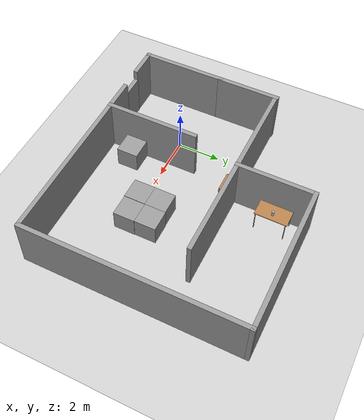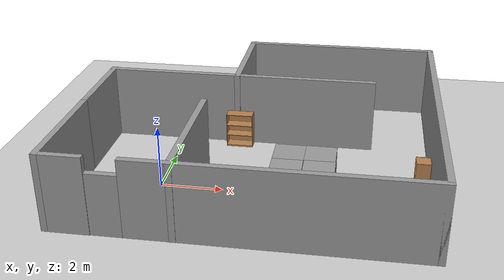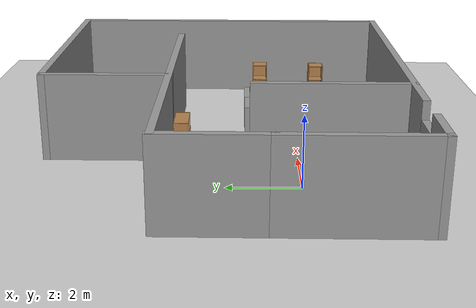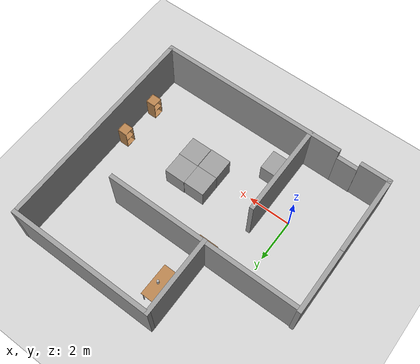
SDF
<sdf version="1.4">
 <world name="default">
  <light name="sun" type="directional">
   <pose>0 0 10 0 -0 0</pose>
   <diffuse>0.8 0.8 0.8 1</diffuse>
   <specular>0.2 0.2 0.2 1</specular>
   <attenuation>
    <range>1000</range>
    <constant>0.9</constant>
    <linear>0.01</linear>
    <quadratic>0.001</quadratic>
   </attenuation>
   <direction>-0.5 0.1 -0.9</direction>
  </light>
  <model name="ground_plane">
   <static>1</static>
   <link name="link">
    <collision name="collision">
     <geometry><plane><normal>0 0 1</normal><size>100 100</size></plane></geometry>
     <surface><friction><ode><mu>100</mu><mu2>50</mu2></ode></friction></surface>
    </collision>
    <visual name="visual">
     <cast_shadows>0</cast_shadows>
     <geometry><plane><normal>0 0 1</normal><size>100 100</size></plane></geometry>
     <material>
      <script><uri>file://media/materials/scripts/gazebo.material</uri><name>Gazebo/Grey</name></script>
     </material>
    </visual>
    <velocity_decay><linear>0</linear><angular>0</angular></velocity_decay>
   </link>
  </model>
  <physics type="ode">
   <max_step_size>0.001</max_step_size>
   <real_time_factor>1</real_time_factor>
   <real_time_update_rate>1000</real_time_update_rate>
   <gravity>0 0 -9.8</gravity>
  </physics>
  <scene><ambient>0.4 0.4 0.4 1</ambient><background>0.7 0.7 0.7 1</background><shadows>1</shadows></scene>
  <model name="simplehouse">
   <link name="Door_0">
    <collision name="Door_0_Collision">
     <geometry><box><size>1 0.2 2</size></box></geometry>
     <pose>0 0 1 0 -0 0</pose>
    </collision>
    <visual name="Door_0_Visual">
     <pose>0 0 1 0 -0 0</pose>
     <geometry><box><size>1 0.2 2</size></box></geometry>
     <material>
      <script><uri>file://media/materials/scripts/gazebo.material</uri><name>Gazebo/Grey</name></script>
     </material>
    </visual>
    <velocity_decay><linear>0</linear><angular>0</angular></velocity_decay>
    <pose>-0.74 -2.95 0 0 -0 0</pose>
   </link>
   <link name="Wall_0">
    <collision name="Wall_0_Collision">
     <geometry><box><size>1.46233 0.2 2.5</size></box></geometry>
     <pose>0 0 1.25 0 -0 0</pose>
    </collision>
    <visual name="Wall_0_Visual">
     <pose>0 0 1.25 0 -0 0</pose>
     <geometry><box><size>1.46233 0.2 2.5</size></box></geometry>
     <material>
      <script><uri>file://media/materials/scripts/gazebo.material</uri><name>Gazebo/Grey</name></script>
     </material>
    </visual>
    <velocity_decay><linear>0</linear><angular>0</angular></velocity_decay>
    <pose>-1.95359 -2.96885 0 0 -0 3.14159</pose>
   </link>
   <link name="Wall_1">
    <collision name="Wall_1_Collision">
     <geometry><box><size>4.00219 0.2 2.5</size></box></geometry>
     <pose>0 0 1.25 0 -0 0</pose>
    </collision>
    <visual name="Wall_1_Visual">
     <pose>0 0 1.25 0 -0 0</pose>
     <geometry><box><size>4.00219 0.2 2.5</size></box></geometry>
     <material>
      <script><uri>file://media/materials/scripts/gazebo.material</uri><name>Gazebo/Grey</name></script>
     </material>
    </visual>
    <velocity_decay><linear>0</linear><angular>0</angular></velocity_decay>
    <pose>-2.58475 -1.06776 0 0 -0 1.5708</pose>
   </link>
   <link name="Wall_10">
    <collision name="Wall_10_Collision">
     <geometry><box><size>3.69801 0.2 2.5</size></box></geometry>
     <pose>0 0 1.25 0 -0 0</pose>
    </collision>
    <visual name="Wall_10_Visual">
     <pose>0 0 1.25 0 -0 0</pose>
     <geometry><box><size>3.69801 0.2 2.5</size></box></geometry>
     <material>
      <script><uri>file://media/materials/scripts/gazebo.material</uri><name>Gazebo/Grey</name></script>
     </material>
    </visual>
    <velocity_decay><linear>0</linear><angular>0</angular></velocity_decay>
    <pose>1.86461 5.32124 0 0 0 -1.5708</pose>
   </link>
   <link name="Wall_12">
    <collision name="Wall_12_Collision">
     <geometry><box><size>4.432 0.2 2.5</size></box></geometry>
     <pose>0 0 1.25 0 -0 0</pose>
    </collision>
    <visual name="Wall_12_Visual">
     <pose>0 0 1.25 0 -0 0</pose>
     <geometry><box><size>4.432 0.2 2.5</size></box></geometry>
     <material>
      <script><uri>file://media/materials/scripts/gazebo.material</uri><name>Gazebo/Grey</name></script>
     </material>
    </visual>
    <velocity_decay><linear>0</linear><angular>0</angular></velocity_decay>
    <pose>1.18871 -0.844672 0 0 -0 1.5708</pose>
   </link>
   <link name="Wall_2">
    <collision name="Wall_2_Collision">
     <geometry><box><size>2.99443 0.2 2.5</size></box></geometry>
     <pose>0 0 1.25 0 -0 0</pose>
    </collision>
    <visual name="Wall_2_Visual">
     <pose>0 0 1.25 0 -0 0</pose>
     <geometry><box><size>2.99443 0.2 2.5</size></box></geometry>
     <material>
      <script><uri>file://media/materials/scripts/gazebo.material</uri><name>Gazebo/Grey</name></script>
     </material>
    </visual>
    <velocity_decay><linear>0</linear><angular>0</angular></velocity_decay>
    <pose>-2.58475 2.23055 0 0 -0 1.5708</pose>
   </link>
   <link name="Wall_4">
    <collision name="Wall_4_Collision">
     <geometry><box><size>9.26205 0.2 2.5</size></box></geometry>
     <pose>0 0 1.25 0 -0 0</pose>
    </collision>
    <visual name="Wall_4_Visual">
     <pose>0 0 1.25 0 -0 0</pose>
     <geometry><box><size>9.26205 0.2 2.5</size></box></geometry>
     <material>
      <script><uri>file://media/materials/scripts/gazebo.material</uri><name>Gazebo/Grey</name></script>
     </material>
    </visual>
    <velocity_decay><linear>0</linear><angular>0</angular></velocity_decay>
    <pose>1.97226 3.58568 0 0 -0 0</pose>
   </link>
   <link name="Wall_7">
    <collision name="Wall_7_Collision">
     <geometry><box><size>8.94 0.2 2.5</size></box></geometry>
     <pose>0 0 1.25 0 -0 0</pose>
    </collision>
    <visual name="Wall_7_Visual">
     <pose>0 0 1.25 0 -0 0</pose>
     <geometry><box><size>8.94 0.2 2.5</size></box></geometry>
     <material>
      <script><uri>file://media/materials/scripts/gazebo.material</uri><name>Gazebo/Grey</name></script>
     </material>
    </visual>
    <velocity_decay><linear>0</linear><angular>0</angular></velocity_decay>
    <pose>4.21288 -2.95115 0 0 -0 0</pose>
   </link>
   <link name="Wall_8">
    <collision name="Wall_8_Collision">
     <geometry><box><size>10.2214 0.2 2.5</size></box></geometry>
     <pose>0 0 1.25 0 -0 0</pose>
    </collision>
    <visual name="Wall_8_Visual">
     <pose>0 0 1.25 0 -0 0</pose>
     <geometry><box><size>10.2214 0.2 2.5</size></box></geometry>
     <material>
      <script><uri>file://media/materials/scripts/gazebo.material</uri><name>Gazebo/Grey</name></script>
     </material>
    </visual>
    <velocity_decay><linear>0</linear><angular>0</angular></velocity_decay>
    <pose>8.58288 2.05955 0 0 -0 1.5708</pose>
   </link>
   <link name="Wall_9">
    <collision name="Wall_9_Collision">
     <geometry><box><size>6.91827 0.2 2.5</size></box></geometry>
     <pose>0 0 1.25 0 -0 0</pose>
    </collision>
    <visual name="Wall_9_Visual">
     <pose>0 0 1.25 0 -0 0</pose>
     <geometry><box><size>6.91827 0.2 2.5</size></box></geometry>
     <material>
      <script><uri>file://media/materials/scripts/gazebo.material</uri><name>Gazebo/Grey</name></script>
     </material>
    </visual>
    <velocity_decay><linear>0</linear><angular>0</angular></velocity_decay>
    <pose>5.22375 7.07025 0 0 -0 3.14159</pose>
   </link>
   <static>1</static>
  </model>
  <model name="bookshelf">
   <static>1</static>
   <link name="link">
    <inertial><mass>1</mass></inertial>
    <collision name="back">
     <pose>0 0.005 0.6 0 -0 0</pose>
     <geometry><box><size>0.9 0.01 1.2</size></box></geometry>
    </collision>
    <visual name="visual1">
     <pose>0 0.005 0.6 0 -0 0</pose>
     <geometry><box><size>0.9 0.01 1.2</size></box></geometry>
     <material>
      <script><uri>file://media/materials/scripts/gazebo.material</uri><name>Gazebo/Wood</name></script>
     </material>
    </visual>
    <collision name="left_side">
     <pose>0.45 -0.195 0.6 0 -0 0</pose>
     <geometry><box><size>0.02 0.4 1.2</size></box></geometry>
    </collision>
    <visual name="visual2">
     <pose>0.45 -0.195 0.6 0 -0 0</pose>
     <geometry><box><size>0.02 0.4 1.2</size></box></geometry>
     <material>
      <script><uri>file://media/materials/scripts/gazebo.material</uri><name>Gazebo/Wood</name></script>
     </material>
    </visual>
    <collision name="right_side">
     <pose>-0.45 -0.195 0.6 0 -0 0</pose>
     <geometry><box><size>0.02 0.4 1.2</size></box></geometry>
    </collision>
    <visual name="visual3">
     <pose>-0.45 -0.195 0.6 0 -0 0</pose>
     <geometry><box><size>0.02 0.4 1.2</size></box></geometry>
     <material>
      <script><uri>file://media/materials/scripts/gazebo.material</uri><name>Gazebo/Wood</name></script>
     </material>
    </visual>
    <collision name="bottom">
     <pose>0 -0.195 0.03 0 -0 0</pose>
     <geometry><box><size>0.88 0.4 0.06</size></box></geometry>
    </collision>
    <visual name="visual4">
     <pose>0 -0.195 0.03 0 -0 0</pose>
     <geometry><box><size>0.88 0.4 0.06</size></box></geometry>
     <material>
      <script><uri>file://media/materials/scripts/gazebo.material</uri><name>Gazebo/Wood</name></script>
     </material>
    </visual>
    <collision name="top">
     <pose>0 -0.195 1.19 0 -0 0</pose>
     <geometry><box><size>0.88 0.4 0.02</size></box></geometry>
    </collision>
    <visual name="visual5">
     <pose>0 -0.195 1.19 0 -0 0</pose>
     <geometry><box><size>0.88 0.4 0.02</size></box></geometry>
     <material>
      <script><uri>file://media/materials/scripts/gazebo.material</uri><name>Gazebo/Wood</name></script>
     </material>
    </visual>
    <collision name="low_shelf">
     <pose>0 -0.195 0.43 0 -0 0</pose>
     <geometry><box><size>0.88 0.4 0.02</size></box></geometry>
    </collision>
    <visual name="visual6">
     <pose>0 -0.195 0.43 0 -0 0</pose>
     <geometry><box><size>0.88 0.4 0.02</size></box></geometry>
     <material>
      <script><uri>file://media/materials/scripts/gazebo.material</uri><name>Gazebo/Wood</name></script>
     </material>
    </visual>
    <collision name="high_shelf">
     <pose>0 -0.195 0.8 0 -0 0</pose>
     <geometry><box><size>0.88 0.4 0.02</size></box></geometry>
    </collision>
    <visual name="visual7">
     <pose>0 -0.195 0.8 0 -0 0</pose>
     <geometry><box><size>0.88 0.4 0.02</size></box></geometry>
     <material>
      <script><uri>file://media/materials/scripts/gazebo.material</uri><name>Gazebo/Wood</name></script>
     </material>
    </visual>
    <velocity_decay><linear>0</linear><angular>0</angular></velocity_decay>
   </link>
   <pose>2 3.44814 0 0 -0 0</pose>
  </model>
  <model name="table">
   <static>1</static>
   <link name="link">
    <collision name="surface">
     <pose>0 0 1 0 -0 0</pose>
     <geometry><box><size>1.5 0.8 0.03</size></box></geometry>
    </collision>
    <visual name="visual1">
     <pose>0 0 1 0 -0 0</pose>
     <geometry><box><size>1.5 0.8 0.03</size></box></geometry>
     <material>
      <script><uri>file://media/materials/scripts/gazebo.material</uri><name>Gazebo/Wood</name></script>
     </material>
    </visual>
    <collision name="front_left_leg">
     <pose>0.68 0.38 0.5 0 -0 0</pose>
     <geometry><cylinder><radius>0.02</radius><length>1</length></cylinder></geometry>
    </collision>
    <visual name="front_left_leg">
     <pose>0.68 0.38 0.5 0 -0 0</pose>
     <geometry><cylinder><radius>0.02</radius><length>1</length></cylinder></geometry>
     <material>
      <script><uri>file://media/materials/scripts/gazebo.material</uri><name>Gazebo/Grey</name></script>
     </material>
    </visual>
    <collision name="front_right_leg">
     <pose>0.68 -0.38 0.5 0 -0 0</pose>
     <geometry><cylinder><radius>0.02</radius><length>1</length></cylinder></geometry>
    </collision>
    <visual name="front_right_leg">
     <pose>0.68 -0.38 0.5 0 -0 0</pose>
     <geometry><cylinder><radius>0.02</radius><length>1</length></cylinder></geometry>
     <material>
      <script><uri>file://media/materials/scripts/gazebo.material</uri><name>Gazebo/Grey</name></script>
     </material>
    </visual>
    <collision name="back_right_leg">
     <pose>-0.68 -0.38 0.5 0 -0 0</pose>
     <geometry><cylinder><radius>0.02</radius><length>1</length></cylinder></geometry>
    </collision>
    <visual name="back_right_leg">
     <pose>-0.68 -0.38 0.5 0 -0 0</pose>
     <geometry><cylinder><radius>0.02</radius><length>1</length></cylinder></geometry>
     <material>
      <script><uri>file://media/materials/scripts/gazebo.material</uri><name>Gazebo/Grey</name></script>
     </material>
    </visual>
    <collision name="back_left_leg">
     <pose>-0.68 0.38 0.5 0 -0 0</pose>
     <geometry><cylinder><radius>0.02</radius><length>1</length></cylinder></geometry>
    </collision>
    <visual name="back_left_leg">
     <pose>-0.68 0.38 0.5 0 -0 0</pose>
     <geometry><cylinder><radius>0.02</radius><length>1</length></cylinder></geometry>
     <material>
      <script><uri>file://media/materials/scripts/gazebo.material</uri><name>Gazebo/Grey</name></script>
     </material>
    </visual>
    <velocity_decay><linear>0</linear><angular>0</angular></velocity_decay>
   </link>
   <pose>2.47078 5.63919 0 0 -0 1.56</pose>
  </model>
  <model name="unit_box_1">
   <pose>1.78871 -1.58208 0.5 0 -0 5e-06</pose>
   <link name="link">
    <inertial>
     <mass>1</mass>
     <inertia><ixx>1</ixx><ixy>0</ixy><ixz>0</ixz><iyy>1</iyy><iyz>0</iyz><izz>1</izz></inertia>
    </inertial>
    <collision name="collision"><geometry><box><size>1 1 1</size></box></geometry></collision>
    <visual name="visual">
     <geometry><box><size>1 1 1</size></box></geometry>
     <material>
      <script><uri>file://media/materials/scripts/gazebo.material</uri><name>Gazebo/Grey</name></script>
     </material>
    </visual>
    <velocity_decay><linear>0</linear><angular>0</angular></velocity_decay>
   </link>
   <static>0</static>
  </model>
  <model name="unit_box_2">
   <pose>3.99996 1.00004 0.5 0 -0 5.2e-05</pose>
   <link name="link">
    <inertial>
     <mass>1</mass>
     <inertia><ixx>1</ixx><ixy>0</ixy><ixz>0</ixz><iyy>1</iyy><iyz>0</iyz><izz>1</izz></inertia>
    </inertial>
    <collision name="collision"><geometry><box><size>1 1 1</size></box></geometry></collision>
    <visual name="visual">
     <geometry><box><size>1 1 1</size></box></geometry>
     <material>
      <script><uri>file://media/materials/scripts/gazebo.material</uri><name>Gazebo/Grey</name></script>
     </material>
    </visual>
    <velocity_decay><linear>0</linear><angular>0</angular></velocity_decay>
   </link>
   <static>0</static>
  </model>
  <model name="unit_box_3">
   <pose>4.99998 1.01826 0.5 0 -0 9.8e-05</pose>
   <link name="link">
    <inertial>
     <mass>1</mass>
     <inertia><ixx>1</ixx><ixy>0</ixy><ixz>0</ixz><iyy>1</iyy><iyz>0</iyz><izz>1</izz></inertia>
    </inertial>
    <collision name="collision"><geometry><box><size>1 1 1</size></box></geometry></collision>
    <visual name="visual">
     <geometry><box><size>1 1 1</size></box></geometry>
     <material>
      <script><uri>file://media/materials/scripts/gazebo.material</uri><name>Gazebo/Grey</name></script>
     </material>
    </visual>
    <velocity_decay><linear>0</linear><angular>0</angular></velocity_decay>
   </link>
   <static>0</static>
  </model>
  <model name="unit_box_4">
   <pose>4 0 0.5 0 -0 0</pose>
   <link name="link">
    <inertial>
     <mass>1</mass>
     <inertia><ixx>1</ixx><ixy>0</ixy><ixz>0</ixz><iyy>1</iyy><iyz>0</iyz><izz>1</izz></inertia>
    </inertial>
    <collision name="collision"><geometry><box><size>1 1 1</size></box></geometry></collision>
    <visual name="visual">
     <geometry><box><size>1 1 1</size></box></geometry>
     <material>
      <script><uri>file://media/materials/scripts/gazebo.material</uri><name>Gazebo/Grey</name></script>
     </material>
    </visual>
    <velocity_decay><linear>0</linear><angular>0</angular></velocity_decay>
   </link>
   <static>0</static>
  </model>
  <model name="unit_box_5">
   <pose>5.01493 0.018257 0.5 0 -0 9.8e-05</pose>
   <link name="link">
    <inertial>
     <mass>1</mass>
     <inertia><ixx>1</ixx><ixy>0</ixy><ixz>0</ixz><iyy>1</iyy><iyz>0</iyz><izz>1</izz></inertia>
    </inertial>
    <collision name="collision"><geometry><box><size>1 1 1</size></box></geometry></collision>
    <visual name="visual">
     <geometry><box><size>1 1 1</size></box></geometry>
     <material>
      <script><uri>file://media/materials/scripts/gazebo.material</uri><name>Gazebo/Grey</name></script>
     </material>
    </visual>
    <velocity_decay><linear>0</linear><angular>0</angular></velocity_decay>
   </link>
   <static>0</static>
  </model>
  <model name="beer">
   <link name="link">
    <pose>0 0 0.115 0 -0 0</pose>
    <inertial>
     <mass>0.39</mass>
     <inertia><ixx>0.00058</ixx><ixy>0</ixy><ixz>0</ixz><iyy>0.00058</iyy><iyz>0</iyz><izz>0.00019</izz></inertia>
    </inertial>
    <collision name="collision">
     <geometry><cylinder><radius>0.055</radius><length>0.23</length></cylinder></geometry>
    </collision>
    <visual name="visual">
     <geometry><cylinder><radius>0.055</radius><length>0.23</length></cylinder></geometry>
     <material>
      <script>
       <uri>model://beer/materials/scripts</uri>
       <uri>model://beer/materials/textures</uri>
       <name>Beer/Diffuse</name>
      </script>
     </material>
    </visual>
    <velocity_decay><linear>0</linear><angular>0</angular></velocity_decay>
   </link>
   <pose>2.59977 5.637 1.01499 3.6e-05 -2.9e-05 0.000624</pose>
   <static>0</static>
  </model>
  <model name="cabinet">
   <static>1</static>
   <link name="cabinet_bottom_plate">
    <inertial>
     <pose>0 0 -1 0 -0 0</pose>
     <inertia><ixx>2.05</ixx><ixy>0</ixy><ixz>0</ixz><iyy>2.05</iyy><iyz>0</iyz><izz>2.05</izz></inertia>
     <mass>25</mass>
    </inertial>
    <collision name="cabinet_bottom_plate_geom">
     <pose>0 0 0.01 0 -0 0</pose>
     <geometry><box><size>0.45 0.45 0.02</size></box></geometry>
    </collision>
    <visual name="cabinet_bottom_plate_geom_visual">
     <pose>0 0 0.01 0 -0 0</pose>
     <geometry><box><size>0.45 0.45 0.02</size></box></geometry>
     <material>
      <script><uri>file://media/materials/scripts/gazebo.material</uri><name>Gazebo/Wood</name></script>
     </material>
    </visual>
    <collision name="cabinet_bottom_plate_geom_cabinet_back_plate">
     <pose>0.235 0 0.51 0 -0 0</pose>
     <geometry><box><size>0.02 0.45 1.02</size></box></geometry>
    </collision>
    <visual name="cabinet_bottom_plate_geom_cabinet_back_plate_visual">
     <pose>0.235 0 0.51 0 -0 0</pose>
     <geometry><box><size>0.02 0.45 1.02</size></box></geometry>
     <material>
      <script><uri>file://media/materials/scripts/gazebo.material</uri><name>Gazebo/Wood</name></script>
     </material>
    </visual>
    <collision name="cabinet_bottom_plate_geom_cabinet_left_plate">
     <pose>0 0.235 0.51 0 -0 0</pose>
     <geometry><box><size>0.45 0.02 1.02</size></box></geometry>
    </collision>
    <visual name="cabinet_bottom_plate_geom_cabinet_left_plate_visual">
     <pose>0 0.235 0.51 0 -0 0</pose>
     <geometry><box><size>0.45 0.02 1.02</size></box></geometry>
     <material>
      <script><uri>file://media/materials/scripts/gazebo.material</uri><name>Gazebo/Wood</name></script>
     </material>
    </visual>
    <collision name="cabinet_bottom_plate_geom_cabinet_middle_plate">
     <pose>0 0 0.51 0 -0 0</pose>
     <geometry><box><size>0.45 0.45 0.02</size></box></geometry>
    </collision>
    <visual name="cabinet_bottom_plate_geom_cabinet_middle_plate_visual">
     <pose>0 0 0.51 0 -0 0</pose>
     <geometry><box><size>0.45 0.45 0.02</size></box></geometry>
     <material>
      <script><uri>file://media/materials/scripts/gazebo.material</uri><name>Gazebo/Wood</name></script>
     </material>
    </visual>
    <collision name="cabinet_bottom_plate_geom_cabinet_right_plate">
     <pose>0 -0.235 0.51 0 -0 0</pose>
     <geometry><box><size>0.45 0.02 1.02</size></box></geometry>
    </collision>
    <visual name="cabinet_bottom_plate_geom_cabinet_right_plate_visual">
     <pose>0 -0.235 0.51 0 -0 0</pose>
     <geometry><box><size>0.45 0.02 1.02</size></box></geometry>
     <material>
      <script><uri>file://media/materials/scripts/gazebo.material</uri><name>Gazebo/Wood</name></script>
     </material>
    </visual>
    <collision name="cabinet_bottom_plate_geom_cabinet_top_plate">
     <pose>0 0 1.01 0 -0 0</pose>
     <geometry><box><size>0.45 0.45 0.02</size></box></geometry>
    </collision>
    <visual name="cabinet_bottom_plate_geom_cabinet_top_plate_visual">
     <pose>0 0 1.01 0 -0 0</pose>
     <geometry><box><size>0.45 0.45 0.02</size></box></geometry>
     <material>
      <script><uri>file://media/materials/scripts/gazebo.material</uri><name>Gazebo/Wood</name></script>
     </material>
    </visual>
    <velocity_decay><linear>0</linear><angular>0</angular></velocity_decay>
   </link>
   <pose>8.20385 0.978087 0 0 -0 0</pose>
  </model>
  <model name="cabinet_0">
   <static>1</static>
   <link name="cabinet_bottom_plate">
    <inertial>
     <pose>0 0 -1 0 -0 0</pose>
     <inertia><ixx>2.05</ixx><ixy>0</ixy><ixz>0</ixz><iyy>2.05</iyy><iyz>0</iyz><izz>2.05</izz></inertia>
     <mass>25</mass>
    </inertial>
    <collision name="cabinet_bottom_plate_geom">
     <pose>0 0 0.01 0 -0 0</pose>
     <geometry><box><size>0.45 0.45 0.02</size></box></geometry>
    </collision>
    <visual name="cabinet_bottom_plate_geom_visual">
     <pose>0 0 0.01 0 -0 0</pose>
     <geometry><box><size>0.45 0.45 0.02</size></box></geometry>
     <material>
      <script><uri>file://media/materials/scripts/gazebo.material</uri><name>Gazebo/Wood</name></script>
     </material>
    </visual>
    <collision name="cabinet_bottom_plate_geom_cabinet_back_plate">
     <pose>0.235 0 0.51 0 -0 0</pose>
     <geometry><box><size>0.02 0.45 1.02</size></box></geometry>
    </collision>
    <visual name="cabinet_bottom_plate_geom_cabinet_back_plate_visual">
     <pose>0.235 0 0.51 0 -0 0</pose>
     <geometry><box><size>0.02 0.45 1.02</size></box></geometry>
     <material>
      <script><uri>file://media/materials/scripts/gazebo.material</uri><name>Gazebo/Wood</name></script>
     </material>
    </visual>
    <collision name="cabinet_bottom_plate_geom_cabinet_left_plate">
     <pose>0 0.235 0.51 0 -0 0</pose>
     <geometry><box><size>0.45 0.02 1.02</size></box></geometry>
    </collision>
    <visual name="cabinet_bottom_plate_geom_cabinet_left_plate_visual">
     <pose>0 0.235 0.51 0 -0 0</pose>
     <geometry><box><size>0.45 0.02 1.02</size></box></geometry>
     <material>
      <script><uri>file://media/materials/scripts/gazebo.material</uri><name>Gazebo/Wood</name></script>
     </material>
    </visual>
    <collision name="cabinet_bottom_plate_geom_cabinet_middle_plate">
     <pose>0 0 0.51 0 -0 0</pose>
     <geometry><box><size>0.45 0.45 0.02</size></box></geometry>
    </collision>
    <visual name="cabinet_bottom_plate_geom_cabinet_middle_plate_visual">
     <pose>0 0 0.51 0 -0 0</pose>
     <geometry><box><size>0.45 0.45 0.02</size></box></geometry>
     <material>
      <script><uri>file://media/materials/scripts/gazebo.material</uri><name>Gazebo/Wood</name></script>
     </material>
    </visual>
    <collision name="cabinet_bottom_plate_geom_cabinet_right_plate">
     <pose>0 -0.235 0.51 0 -0 0</pose>
     <geometry><box><size>0.45 0.02 1.02</size></box></geometry>
    </collision>
    <visual name="cabinet_bottom_plate_geom_cabinet_right_plate_visual">
     <pose>0 -0.235 0.51 0 -0 0</pose>
     <geometry><box><size>0.45 0.02 1.02</size></box></geometry>
     <material>
      <script><uri>file://media/materials/scripts/gazebo.material</uri><name>Gazebo/Wood</name></script>
     </material>
    </visual>
    <collision name="cabinet_bottom_plate_geom_cabinet_top_plate">
     <pose>0 0 1.01 0 -0 0</pose>
     <geometry><box><size>0.45 0.45 0.02</size></box></geometry>
    </collision>
    <visual name="cabinet_bottom_plate_geom_cabinet_top_plate_visual">
     <pose>0 0 1.01 0 -0 0</pose>
     <geometry><box><size>0.45 0.45 0.02</size></box></geometry>
     <material>
      <script><uri>file://media/materials/scripts/gazebo.material</uri><name>Gazebo/Wood</name></script>
     </material>
    </visual>
    <velocity_decay><linear>0</linear><angular>0</angular></velocity_decay>
   </link>
   <pose>8.15259 -0.973909 0 0 -0 0</pose>
  </model>
 </world>
</sdf>
